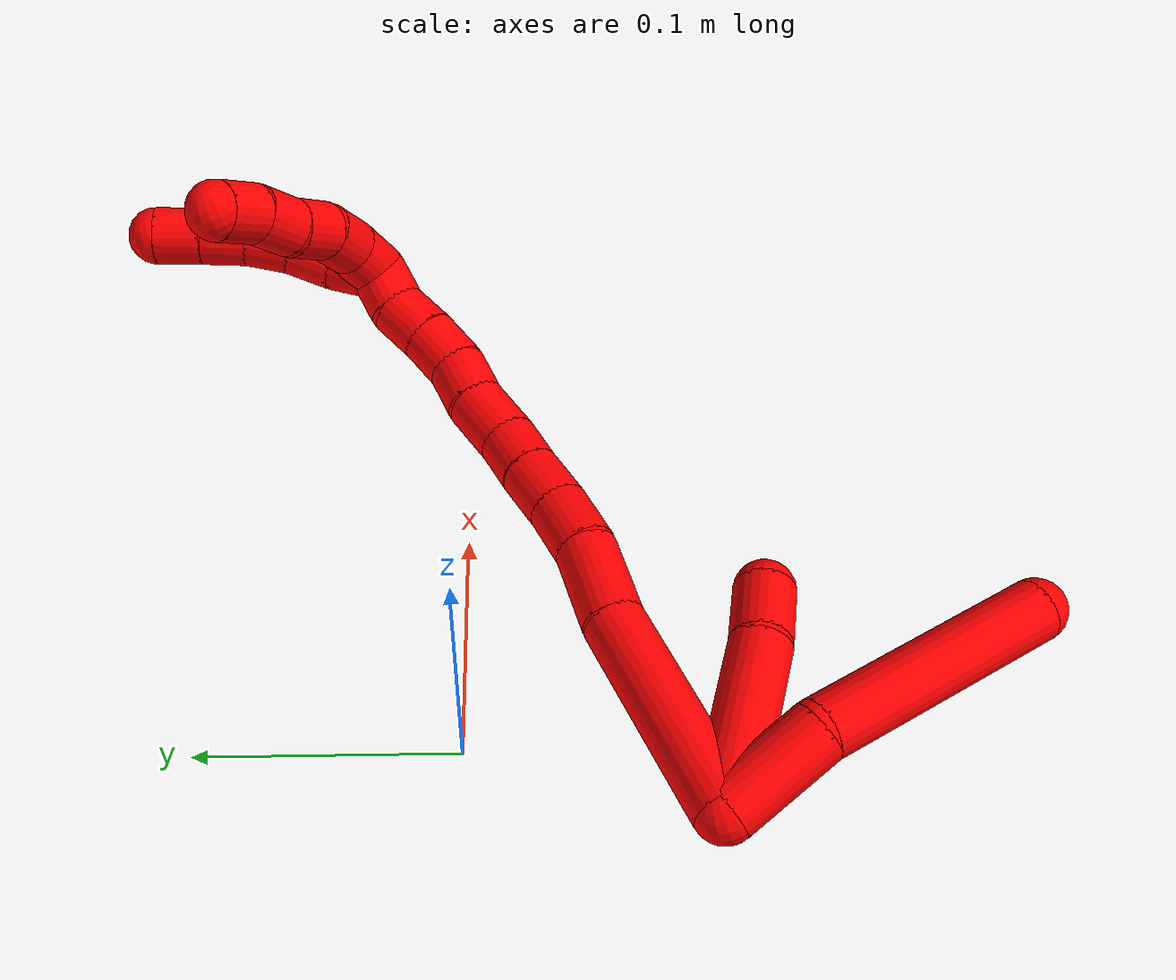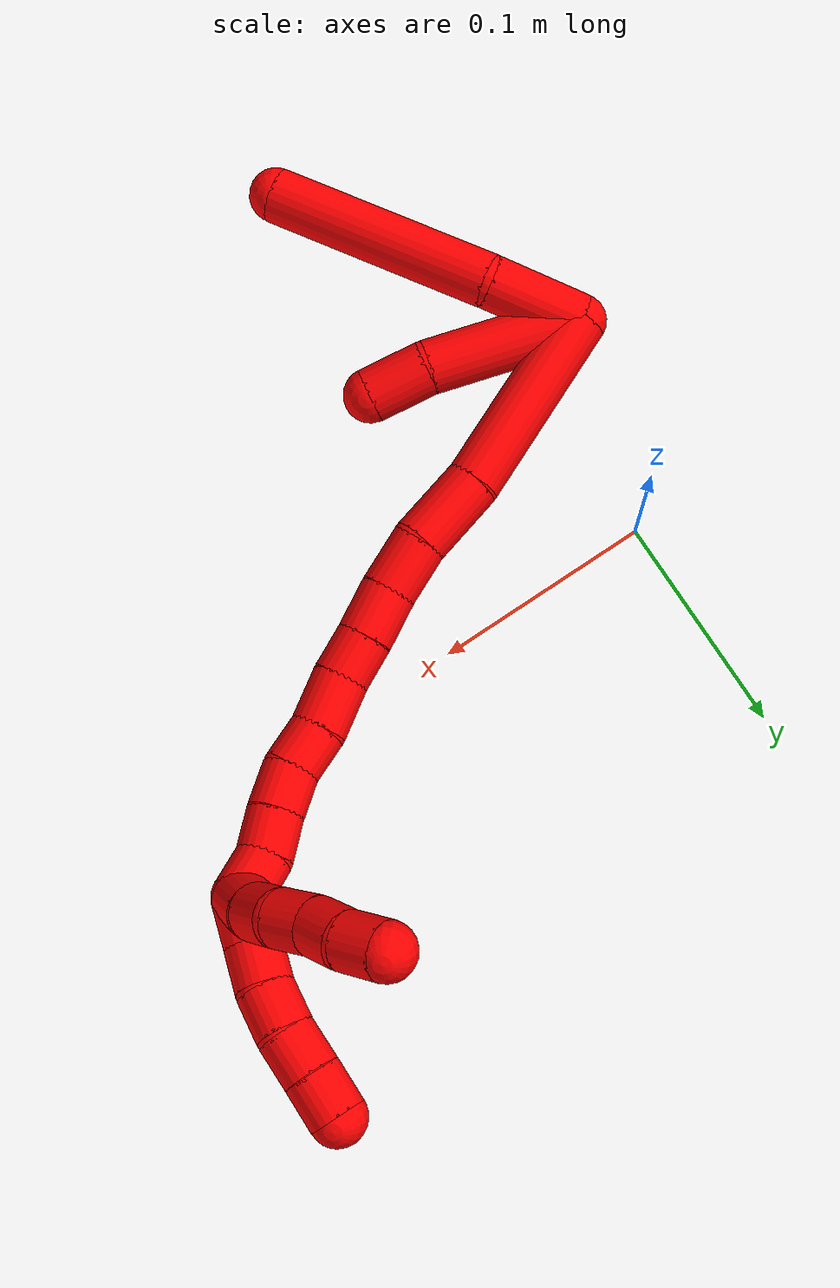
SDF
<sdf version="1.7">
 <world name="default">
  <model name="2">
   <static>0</static>
   <link name="2">
    <collision name="collision-cylinder-e_1_2_8">
     <pose>0.01522 -0.01593 0.002915 1.38982 0.754379 0.63794</pose>
     <geometry><cylinder><radius>0.0125</radius><length>0.044449</length></cylinder></geometry>
     <surface>
      <friction><ode><mu>1.16</mu><mu2>1.16</mu2><slip1>0</slip1><slip2>0</slip2></ode></friction>
      <contact><ode><kp>1e+06</kp><kd>1</kd><max_vel>0</max_vel><min_depth>0.001</min_depth></ode></contact>
     </surface>
    </collision>
    <visual name="visual-cylinder-e_1_2_8">
     <pose>0.01522 -0.01593 0.002915 1.38982 0.754379 0.63794</pose>
     <geometry><cylinder><radius>0.0125</radius><length>0.044449</length></cylinder></geometry>
     <material><ambient>1 0 0 1</ambient></material>
    </visual>
    <collision name="collision-cylinder-e_2_8_6">
     <pose>0.069043 -0.066851 -0.002583 1.80676 0.820439 1.00853</pose>
     <geometry><cylinder><radius>0.0125</radius><length>0.105551</length></cylinder></geometry>
     <surface>
      <friction><ode><mu>1.16</mu><mu2>1.16</mu2><slip1>0</slip1><slip2>0</slip2></ode></friction>
      <contact><ode><kp>1e+06</kp><kd>1</kd><max_vel>0</max_vel><min_depth>0.001</min_depth></ode></contact>
     </surface>
    </collision>
    <visual name="visual-cylinder-e_2_8_6">
     <pose>0.069043 -0.066851 -0.002583 1.80676 0.820439 1.00853</pose>
     <geometry><cylinder><radius>0.0125</radius><length>0.105551</length></cylinder></geometry>
     <material><ambient>1 0 0 1</ambient></material>
    </visual>
    <collision name="collision-cylinder-e_1_2_9">
     <pose>0.034478 -0.003744 0.009129 0.389211 1.29206 0.295053</pose>
     <geometry><cylinder><radius>0.0125</radius><length>0.071724</length></cylinder></geometry>
     <surface>
      <friction><ode><mu>1.16</mu><mu2>1.16</mu2><slip1>0</slip1><slip2>0</slip2></ode></friction>
      <contact><ode><kp>1e+06</kp><kd>1</kd><max_vel>0</max_vel><min_depth>0.001</min_depth></ode></contact>
     </surface>
    </collision>
    <visual name="visual-cylinder-e_1_2_9">
     <pose>0.034478 -0.003744 0.009129 0.389211 1.29206 0.295053</pose>
     <geometry><cylinder><radius>0.0125</radius><length>0.071724</length></cylinder></geometry>
     <material><ambient>1 0 0 1</ambient></material>
    </visual>
    <collision name="collision-cylinder-e_2_9_5">
     <pose>0.082903 -0.006641 0.020413 -0.374673 1.40624 -0.318632</pose>
     <geometry><cylinder><radius>0.0125</radius><length>0.028276</length></cylinder></geometry>
     <surface>
      <friction><ode><mu>1.16</mu><mu2>1.16</mu2><slip1>0</slip1><slip2>0</slip2></ode></friction>
      <contact><ode><kp>1e+06</kp><kd>1</kd><max_vel>0</max_vel><min_depth>0.001</min_depth></ode></contact>
     </surface>
    </collision>
    <visual name="visual-cylinder-e_2_9_5">
     <pose>0.082903 -0.006641 0.020413 -0.374673 1.40624 -0.318632</pose>
     <geometry><cylinder><radius>0.0125</radius><length>0.028276</length></cylinder></geometry>
     <material><ambient>1 0 0 1</ambient></material>
    </visual>
    <collision name="collision-cylinder-e_1_2_10">
     <pose>0.033174 0.022372 0.019674 -0.849489 0.839062 -0.398097</pose>
     <geometry><cylinder><radius>0.0125</radius><length>0.089176</length></cylinder></geometry>
     <surface>
      <friction><ode><mu>1.16</mu><mu2>1.16</mu2><slip1>0</slip1><slip2>0</slip2></ode></friction>
      <contact><ode><kp>1e+06</kp><kd>1</kd><max_vel>0</max_vel><min_depth>0.001</min_depth></ode></contact>
     </surface>
    </collision>
    <visual name="visual-cylinder-e_1_2_10">
     <pose>0.033174 0.022372 0.019674 -0.849489 0.839062 -0.398097</pose>
     <geometry><cylinder><radius>0.0125</radius><length>0.089176</length></cylinder></geometry>
     <material><ambient>1 0 0 1</ambient></material>
    </visual>
    <collision name="collision-cylinder-e_2_10_11">
     <pose>0.081058 0.051475 0.046997 -0.721603 0.964974 -0.390232</pose>
     <geometry><cylinder><radius>0.0125</radius><length>0.035787</length></cylinder></geometry>
     <surface>
      <friction><ode><mu>1.16</mu><mu2>1.16</mu2><slip1>0</slip1><slip2>0</slip2></ode></friction>
      <contact><ode><kp>1e+06</kp><kd>1</kd><max_vel>0</max_vel><min_depth>0.001</min_depth></ode></contact>
     </surface>
    </collision>
    <visual name="visual-cylinder-e_2_10_11">
     <pose>0.081058 0.051475 0.046997 -0.721603 0.964974 -0.390232</pose>
     <geometry><cylinder><radius>0.0125</radius><length>0.035787</length></cylinder></geometry>
     <material><ambient>1 0 0 1</ambient></material>
    </visual>
    <collision name="collision-cylinder-e_3_11_12">
     <pose>0.105467 0.065073 0.059328 -0.972381 0.86241 -0.477051</pose>
     <geometry><cylinder><radius>0.0125</radius><length>0.025548</length></cylinder></geometry>
     <surface>
      <friction><ode><mu>1.16</mu><mu2>1.16</mu2><slip1>0</slip1><slip2>0</slip2></ode></friction>
      <contact><ode><kp>1e+06</kp><kd>1</kd><max_vel>0</max_vel><min_depth>0.001</min_depth></ode></contact>
     </surface>
    </collision>
    <visual name="visual-cylinder-e_3_11_12">
     <pose>0.105467 0.065073 0.059328 -0.972381 0.86241 -0.477051</pose>
     <geometry><cylinder><radius>0.0125</radius><length>0.025548</length></cylinder></geometry>
     <material><ambient>1 0 0 1</ambient></material>
    </visual>
    <collision name="collision-cylinder-e_4_12_13">
     <pose>0.123113 0.078761 0.068881 -0.95066 0.758645 -0.404722</pose>
     <geometry><cylinder><radius>0.0125</radius><length>0.023099</length></cylinder></geometry>
     <surface>
      <friction><ode><mu>1.16</mu><mu2>1.16</mu2><slip1>0</slip1><slip2>0</slip2></ode></friction>
      <contact><ode><kp>1e+06</kp><kd>1</kd><max_vel>0</max_vel><min_depth>0.001</min_depth></ode></contact>
     </surface>
    </collision>
    <visual name="visual-cylinder-e_4_12_13">
     <pose>0.123113 0.078761 0.068881 -0.95066 0.758645 -0.404722</pose>
     <geometry><cylinder><radius>0.0125</radius><length>0.023099</length></cylinder></geometry>
     <material><ambient>1 0 0 1</ambient></material>
    </visual>
    <collision name="collision-cylinder-e_5_13_14">
     <pose>0.138473 0.091218 0.077972 -0.928109 0.811229 -0.423423</pose>
     <geometry><cylinder><radius>0.0125</radius><length>0.02045</length></cylinder></geometry>
     <surface>
      <friction><ode><mu>1.16</mu><mu2>1.16</mu2><slip1>0</slip1><slip2>0</slip2></ode></friction>
      <contact><ode><kp>1e+06</kp><kd>1</kd><max_vel>0</max_vel><min_depth>0.001</min_depth></ode></contact>
     </surface>
    </collision>
    <visual name="visual-cylinder-e_5_13_14">
     <pose>0.138473 0.091218 0.077972 -0.928109 0.811229 -0.423423</pose>
     <geometry><cylinder><radius>0.0125</radius><length>0.02045</length></cylinder></geometry>
     <material><ambient>1 0 0 1</ambient></material>
    </visual>
    <collision name="collision-cylinder-e_6_14_15">
     <pose>0.153466 0.104371 0.088498 -0.872818 0.657713 -0.315669</pose>
     <geometry><cylinder><radius>0.0125</radius><length>0.024795</length></cylinder></geometry>
     <surface>
      <friction><ode><mu>1.16</mu><mu2>1.16</mu2><slip1>0</slip1><slip2>0</slip2></ode></friction>
      <contact><ode><kp>1e+06</kp><kd>1</kd><max_vel>0</max_vel><min_depth>0.001</min_depth></ode></contact>
     </surface>
    </collision>
    <visual name="visual-cylinder-e_6_14_15">
     <pose>0.153466 0.104371 0.088498 -0.872818 0.657713 -0.315669</pose>
     <geometry><cylinder><radius>0.0125</radius><length>0.024795</length></cylinder></geometry>
     <material><ambient>1 0 0 1</ambient></material>
    </visual>
    <collision name="collision-cylinder-e_7_15_16">
     <pose>0.168466 0.116557 0.100332 -0.701251 0.797994 -0.305988</pose>
     <geometry><cylinder><radius>0.0125</radius><length>0.020732</length></cylinder></geometry>
     <surface>
      <friction><ode><mu>1.16</mu><mu2>1.16</mu2><slip1>0</slip1><slip2>0</slip2></ode></friction>
      <contact><ode><kp>1e+06</kp><kd>1</kd><max_vel>0</max_vel><min_depth>0.001</min_depth></ode></contact>
     </surface>
    </collision>
    <visual name="visual-cylinder-e_7_15_16">
     <pose>0.168466 0.116557 0.100332 -0.701251 0.797994 -0.305988</pose>
     <geometry><cylinder><radius>0.0125</radius><length>0.020732</length></cylinder></geometry>
     <material><ambient>1 0 0 1</ambient></material>
    </visual>
    <collision name="collision-cylinder-e_8_16_17">
     <pose>0.181007 0.127344 0.1122 -0.767627 0.526464 -0.216805</pose>
     <geometry><cylinder><radius>0.0125</radius><length>0.020378</length></cylinder></geometry>
     <surface>
      <friction><ode><mu>1.16</mu><mu2>1.16</mu2><slip1>0</slip1><slip2>0</slip2></ode></friction>
      <contact><ode><kp>1e+06</kp><kd>1</kd><max_vel>0</max_vel><min_depth>0.001</min_depth></ode></contact>
     </surface>
    </collision>
    <visual name="visual-cylinder-e_8_16_17">
     <pose>0.181007 0.127344 0.1122 -0.767627 0.526464 -0.216805</pose>
     <geometry><cylinder><radius>0.0125</radius><length>0.020378</length></cylinder></geometry>
     <material><ambient>1 0 0 1</ambient></material>
    </visual>
    <collision name="collision-cylinder-e_9_17_18">
     <pose>0.190429 0.140067 0.124712 -0.819265 0.444085 -0.195428</pose>
     <geometry><cylinder><radius>0.0125</radius><length>0.020023</length></cylinder></geometry>
     <surface>
      <friction><ode><mu>1.16</mu><mu2>1.16</mu2><slip1>0</slip1><slip2>0</slip2></ode></friction>
      <contact><ode><kp>1e+06</kp><kd>1</kd><max_vel>0</max_vel><min_depth>0.001</min_depth></ode></contact>
     </surface>
    </collision>
    <visual name="visual-cylinder-e_9_17_18">
     <pose>0.190429 0.140067 0.124712 -0.819265 0.444085 -0.195428</pose>
     <geometry><cylinder><radius>0.0125</radius><length>0.020023</length></cylinder></geometry>
     <material><ambient>1 0 0 1</ambient></material>
    </visual>
    <collision name="collision-cylinder-e_10_18_1">
     <pose>0.200292 0.150528 0.138255 -0.482059 0.589347 -0.148934</pose>
     <geometry><cylinder><radius>0.0125</radius><length>0.020012</length></cylinder></geometry>
     <surface>
      <friction><ode><mu>1.16</mu><mu2>1.16</mu2><slip1>0</slip1><slip2>0</slip2></ode></friction>
      <contact><ode><kp>1e+06</kp><kd>1</kd><max_vel>0</max_vel><min_depth>0.001</min_depth></ode></contact>
     </surface>
    </collision>
    <visual name="visual-cylinder-e_10_18_1">
     <pose>0.200292 0.150528 0.138255 -0.482059 0.589347 -0.148934</pose>
     <geometry><cylinder><radius>0.0125</radius><length>0.020012</length></cylinder></geometry>
     <material><ambient>1 0 0 1</ambient></material>
    </visual>
    <collision name="collision-cylinder-e_1_1_19">
     <pose>0.20097 0.155446 0.154287 -0.121892 -0.510116 0.031819</pose>
     <geometry><cylinder><radius>0.0125</radius><length>0.02</length></cylinder></geometry>
     <surface>
      <friction><ode><mu>1.16</mu><mu2>1.16</mu2><slip1>0</slip1><slip2>0</slip2></ode></friction>
      <contact><ode><kp>1e+06</kp><kd>1</kd><max_vel>0</max_vel><min_depth>0.001</min_depth></ode></contact>
     </surface>
    </collision>
    <visual name="visual-cylinder-e_1_1_19">
     <pose>0.20097 0.155446 0.154287 -0.121892 -0.510116 0.031819</pose>
     <geometry><cylinder><radius>0.0125</radius><length>0.02</length></cylinder></geometry>
     <material><ambient>1 0 0 1</ambient></material>
    </visual>
    <collision name="collision-cylinder-e_2_19_20">
     <pose>0.189297 0.156826 0.170283 -0.043403 -0.746533 0.017</pose>
     <geometry><cylinder><radius>0.0125</radius><length>0.02</length></cylinder></geometry>
     <surface>
      <friction><ode><mu>1.16</mu><mu2>1.16</mu2><slip1>0</slip1><slip2>0</slip2></ode></friction>
      <contact><ode><kp>1e+06</kp><kd>1</kd><max_vel>0</max_vel><min_depth>0.001</min_depth></ode></contact>
     </surface>
    </collision>
    <visual name="visual-cylinder-e_2_19_20">
     <pose>0.189297 0.156826 0.170283 -0.043403 -0.746533 0.017</pose>
     <geometry><cylinder><radius>0.0125</radius><length>0.02</length></cylinder></geometry>
     <material><ambient>1 0 0 1</ambient></material>
    </visual>
    <collision name="collision-cylinder-e_3_20_21">
     <pose>0.174318 0.159295 0.182939 -0.384041 -0.95933 0.201579</pose>
     <geometry><cylinder><radius>0.0125</radius><length>0.02</length></cylinder></geometry>
     <surface>
      <friction><ode><mu>1.16</mu><mu2>1.16</mu2><slip1>0</slip1><slip2>0</slip2></ode></friction>
      <contact><ode><kp>1e+06</kp><kd>1</kd><max_vel>0</max_vel><min_depth>0.001</min_depth></ode></contact>
     </surface>
    </collision>
    <visual name="visual-cylinder-e_3_20_21">
     <pose>0.174318 0.159295 0.182939 -0.384041 -0.95933 0.201579</pose>
     <geometry><cylinder><radius>0.0125</radius><length>0.02</length></cylinder></geometry>
     <material><ambient>1 0 0 1</ambient></material>
    </visual>
    <collision name="collision-cylinder-e_4_21_22">
     <pose>0.159322 0.163708 0.195229 -0.313913 -0.748758 0.124202</pose>
     <geometry><cylinder><radius>0.0125</radius><length>0.02</length></cylinder></geometry>
     <surface>
      <friction><ode><mu>1.16</mu><mu2>1.16</mu2><slip1>0</slip1><slip2>0</slip2></ode></friction>
      <contact><ode><kp>1e+06</kp><kd>1</kd><max_vel>0</max_vel><min_depth>0.001</min_depth></ode></contact>
     </surface>
    </collision>
    <visual name="visual-cylinder-e_4_21_22">
     <pose>0.159322 0.163708 0.195229 -0.313913 -0.748758 0.124202</pose>
     <geometry><cylinder><radius>0.0125</radius><length>0.02</length></cylinder></geometry>
     <material><ambient>1 0 0 1</ambient></material>
    </visual>
    <collision name="collision-cylinder-e_5_22_4">
     <pose>0.144407 0.168652 0.2074 -0.475934 -0.945429 0.246825</pose>
     <geometry><cylinder><radius>0.0125</radius><length>0.02</length></cylinder></geometry>
     <surface>
      <friction><ode><mu>1.16</mu><mu2>1.16</mu2><slip1>0</slip1><slip2>0</slip2></ode></friction>
      <contact><ode><kp>1e+06</kp><kd>1</kd><max_vel>0</max_vel><min_depth>0.001</min_depth></ode></contact>
     </surface>
    </collision>
    <visual name="visual-cylinder-e_5_22_4">
     <pose>0.144407 0.168652 0.2074 -0.475934 -0.945429 0.246825</pose>
     <geometry><cylinder><radius>0.0125</radius><length>0.02</length></cylinder></geometry>
     <material><ambient>1 0 0 1</ambient></material>
    </visual>
    <collision name="collision-cylinder-e_1_1_23">
     <pose>0.206053 0.16339 0.149969 -1.12139 0.019968 -0.012538</pose>
     <geometry><cylinder><radius>0.0125</radius><length>0.02</length></cylinder></geometry>
     <surface>
      <friction><ode><mu>1.16</mu><mu2>1.16</mu2><slip1>0</slip1><slip2>0</slip2></ode></friction>
      <contact><ode><kp>1e+06</kp><kd>1</kd><max_vel>0</max_vel><min_depth>0.001</min_depth></ode></contact>
     </surface>
    </collision>
    <visual name="visual-cylinder-e_1_1_23">
     <pose>0.206053 0.16339 0.149969 -1.12139 0.019968 -0.012538</pose>
     <geometry><cylinder><radius>0.0125</radius><length>0.02</length></cylinder></geometry>
     <material><ambient>1 0 0 1</ambient></material>
    </visual>
    <collision name="collision-cylinder-e_2_23_24">
     <pose>0.205714 0.180293 0.160422 -0.912311 -0.053886 0.026445</pose>
     <geometry><cylinder><radius>0.0125</radius><length>0.02</length></cylinder></geometry>
     <surface>
      <friction><ode><mu>1.16</mu><mu2>1.16</mu2><slip1>0</slip1><slip2>0</slip2></ode></friction>
      <contact><ode><kp>1e+06</kp><kd>1</kd><max_vel>0</max_vel><min_depth>0.001</min_depth></ode></contact>
     </surface>
    </collision>
    <visual name="visual-cylinder-e_2_23_24">
     <pose>0.205714 0.180293 0.160422 -0.912311 -0.053886 0.026445</pose>
     <geometry><cylinder><radius>0.0125</radius><length>0.02</length></cylinder></geometry>
     <material><ambient>1 0 0 1</ambient></material>
    </visual>
    <collision name="collision-cylinder-e_3_24_25">
     <pose>0.203248 0.196579 0.171624 -1.02522 -0.193967 0.109397</pose>
     <geometry><cylinder><radius>0.0125</radius><length>0.02</length></cylinder></geometry>
     <surface>
      <friction><ode><mu>1.16</mu><mu2>1.16</mu2><slip1>0</slip1><slip2>0</slip2></ode></friction>
      <contact><ode><kp>1e+06</kp><kd>1</kd><max_vel>0</max_vel><min_depth>0.001</min_depth></ode></contact>
     </surface>
    </collision>
    <visual name="visual-cylinder-e_3_24_25">
     <pose>0.203248 0.196579 0.171624 -1.02522 -0.193967 0.109397</pose>
     <geometry><cylinder><radius>0.0125</radius><length>0.02</length></cylinder></geometry>
     <material><ambient>1 0 0 1</ambient></material>
    </visual>
    <collision name="collision-cylinder-e_4_25_26">
     <pose>0.198505 0.213754 0.18057 -1.15751 -0.285394 0.187201</pose>
     <geometry><cylinder><radius>0.0125</radius><length>0.02</length></cylinder></geometry>
     <surface>
      <friction><ode><mu>1.16</mu><mu2>1.16</mu2><slip1>0</slip1><slip2>0</slip2></ode></friction>
      <contact><ode><kp>1e+06</kp><kd>1</kd><max_vel>0</max_vel><min_depth>0.001</min_depth></ode></contact>
     </surface>
    </collision>
    <visual name="visual-cylinder-e_4_25_26">
     <pose>0.198505 0.213754 0.18057 -1.15751 -0.285394 0.187201</pose>
     <geometry><cylinder><radius>0.0125</radius><length>0.02</length></cylinder></geometry>
     <material><ambient>1 0 0 1</ambient></material>
    </visual>
    <collision name="collision-cylinder-e_5_26_3">
     <pose>0.19313 0.231544 0.187947 -1.19773 -0.258859 0.177191</pose>
     <geometry><cylinder><radius>0.0125</radius><length>0.02</length></cylinder></geometry>
     <surface>
      <friction><ode><mu>1.16</mu><mu2>1.16</mu2><slip1>0</slip1><slip2>0</slip2></ode></friction>
      <contact><ode><kp>1e+06</kp><kd>1</kd><max_vel>0</max_vel><min_depth>0.001</min_depth></ode></contact>
     </surface>
    </collision>
    <visual name="visual-cylinder-e_5_26_3">
     <pose>0.19313 0.231544 0.187947 -1.19773 -0.258859 0.177191</pose>
     <geometry><cylinder><radius>0.0125</radius><length>0.02</length></cylinder></geometry>
     <material><ambient>1 0 0 1</ambient></material>
    </visual>
    <collision name="collision-sphere-3">
     <pose>0.19057 0.240546 0.19147 0 -0 0</pose>
     <geometry><sphere><radius>0.0125</radius></sphere></geometry>
     <surface>
      <friction><ode><mu>1.16</mu><mu2>1.16</mu2><slip1>0</slip1><slip2>0</slip2></ode></friction>
      <contact><ode><kp>1e+06</kp><kd>1</kd><max_vel>0</max_vel><min_depth>0.001</min_depth></ode></contact>
     </surface>
    </collision>
    <visual name="visual-sphere-3">
     <pose>0.19057 0.240546 0.19147 0 -0 0</pose>
     <geometry><sphere><radius>0.0125</radius></sphere></geometry>
     <material><ambient>1 0 0 1</ambient></material>
    </visual>
    <collision name="collision-sphere-26">
     <pose>0.19569 0.222542 0.184424 0 -0 0</pose>
     <geometry><sphere><radius>0.0125</radius></sphere></geometry>
     <surface>
      <friction><ode><mu>1.16</mu><mu2>1.16</mu2><slip1>0</slip1><slip2>0</slip2></ode></friction>
      <contact><ode><kp>1e+06</kp><kd>1</kd><max_vel>0</max_vel><min_depth>0.001</min_depth></ode></contact>
     </surface>
    </collision>
    <visual name="visual-sphere-26">
     <pose>0.19569 0.222542 0.184424 0 -0 0</pose>
     <geometry><sphere><radius>0.0125</radius></sphere></geometry>
     <material><ambient>1 0 0 1</ambient></material>
    </visual>
    <collision name="collision-sphere-25">
     <pose>0.20132 0.204967 0.176716 0 -0 0</pose>
     <geometry><sphere><radius>0.0125</radius></sphere></geometry>
     <surface>
      <friction><ode><mu>1.16</mu><mu2>1.16</mu2><slip1>0</slip1><slip2>0</slip2></ode></friction>
      <contact><ode><kp>1e+06</kp><kd>1</kd><max_vel>0</max_vel><min_depth>0.001</min_depth></ode></contact>
     </surface>
    </collision>
    <visual name="visual-sphere-25">
     <pose>0.20132 0.204967 0.176716 0 -0 0</pose>
     <geometry><sphere><radius>0.0125</radius></sphere></geometry>
     <material><ambient>1 0 0 1</ambient></material>
    </visual>
    <collision name="collision-sphere-24">
     <pose>0.205175 0.188191 0.166533 0 -0 0</pose>
     <geometry><sphere><radius>0.0125</radius></sphere></geometry>
     <surface>
      <friction><ode><mu>1.16</mu><mu2>1.16</mu2><slip1>0</slip1><slip2>0</slip2></ode></friction>
      <contact><ode><kp>1e+06</kp><kd>1</kd><max_vel>0</max_vel><min_depth>0.001</min_depth></ode></contact>
     </surface>
    </collision>
    <visual name="visual-sphere-24">
     <pose>0.205175 0.188191 0.166533 0 -0 0</pose>
     <geometry><sphere><radius>0.0125</radius></sphere></geometry>
     <material><ambient>1 0 0 1</ambient></material>
    </visual>
    <collision name="collision-sphere-23">
     <pose>0.206253 0.172395 0.154312 0 -0 0</pose>
     <geometry><sphere><radius>0.0125</radius></sphere></geometry>
     <surface>
      <friction><ode><mu>1.16</mu><mu2>1.16</mu2><slip1>0</slip1><slip2>0</slip2></ode></friction>
      <contact><ode><kp>1e+06</kp><kd>1</kd><max_vel>0</max_vel><min_depth>0.001</min_depth></ode></contact>
     </surface>
    </collision>
    <visual name="visual-sphere-23">
     <pose>0.206253 0.172395 0.154312 0 -0 0</pose>
     <geometry><sphere><radius>0.0125</radius></sphere></geometry>
     <material><ambient>1 0 0 1</ambient></material>
    </visual>
    <collision name="collision-sphere-4">
     <pose>0.1363 0.171334 0.212603 0 -0 0</pose>
     <geometry><sphere><radius>0.0125</radius></sphere></geometry>
     <surface>
      <friction><ode><mu>1.16</mu><mu2>1.16</mu2><slip1>0</slip1><slip2>0</slip2></ode></friction>
      <contact><ode><kp>1e+06</kp><kd>1</kd><max_vel>0</max_vel><min_depth>0.001</min_depth></ode></contact>
     </surface>
    </collision>
    <visual name="visual-sphere-4">
     <pose>0.1363 0.171334 0.212603 0 -0 0</pose>
     <geometry><sphere><radius>0.0125</radius></sphere></geometry>
     <material><ambient>1 0 0 1</ambient></material>
    </visual>
    <collision name="collision-sphere-22">
     <pose>0.152515 0.16597 0.202196 0 -0 0</pose>
     <geometry><sphere><radius>0.0125</radius></sphere></geometry>
     <surface>
      <friction><ode><mu>1.16</mu><mu2>1.16</mu2><slip1>0</slip1><slip2>0</slip2></ode></friction>
      <contact><ode><kp>1e+06</kp><kd>1</kd><max_vel>0</max_vel><min_depth>0.001</min_depth></ode></contact>
     </surface>
    </collision>
    <visual name="visual-sphere-22">
     <pose>0.152515 0.16597 0.202196 0 -0 0</pose>
     <geometry><sphere><radius>0.0125</radius></sphere></geometry>
     <material><ambient>1 0 0 1</ambient></material>
    </visual>
    <collision name="collision-sphere-21">
     <pose>0.16613 0.161446 0.188261 0 -0 0</pose>
     <geometry><sphere><radius>0.0125</radius></sphere></geometry>
     <surface>
      <friction><ode><mu>1.16</mu><mu2>1.16</mu2><slip1>0</slip1><slip2>0</slip2></ode></friction>
      <contact><ode><kp>1e+06</kp><kd>1</kd><max_vel>0</max_vel><min_depth>0.001</min_depth></ode></contact>
     </surface>
    </collision>
    <visual name="visual-sphere-21">
     <pose>0.16613 0.161446 0.188261 0 -0 0</pose>
     <geometry><sphere><radius>0.0125</radius></sphere></geometry>
     <material><ambient>1 0 0 1</ambient></material>
    </visual>
    <collision name="collision-sphere-20">
     <pose>0.182506 0.157144 0.177616 0 -0 0</pose>
     <geometry><sphere><radius>0.0125</radius></sphere></geometry>
     <surface>
      <friction><ode><mu>1.16</mu><mu2>1.16</mu2><slip1>0</slip1><slip2>0</slip2></ode></friction>
      <contact><ode><kp>1e+06</kp><kd>1</kd><max_vel>0</max_vel><min_depth>0.001</min_depth></ode></contact>
     </surface>
    </collision>
    <visual name="visual-sphere-20">
     <pose>0.182506 0.157144 0.177616 0 -0 0</pose>
     <geometry><sphere><radius>0.0125</radius></sphere></geometry>
     <material><ambient>1 0 0 1</ambient></material>
    </visual>
    <collision name="collision-sphere-10">
     <pose>0.066348 0.044744 0.039347 0 -0 0</pose>
     <geometry><sphere><radius>0.0125</radius></sphere></geometry>
     <surface>
      <friction><ode><mu>1.16</mu><mu2>1.16</mu2><slip1>0</slip1><slip2>0</slip2></ode></friction>
      <contact><ode><kp>1e+06</kp><kd>1</kd><max_vel>0</max_vel><min_depth>0.001</min_depth></ode></contact>
     </surface>
    </collision>
    <visual name="visual-sphere-10">
     <pose>0.066348 0.044744 0.039347 0 -0 0</pose>
     <geometry><sphere><radius>0.0125</radius></sphere></geometry>
     <material><ambient>1 0 0 1</ambient></material>
    </visual>
    <collision name="collision-sphere-5">
     <pose>0.09685 -0.005793 0.022569 0 -0 0</pose>
     <geometry><sphere><radius>0.0125</radius></sphere></geometry>
     <surface>
      <friction><ode><mu>1.16</mu><mu2>1.16</mu2><slip1>0</slip1><slip2>0</slip2></ode></friction>
      <contact><ode><kp>1e+06</kp><kd>1</kd><max_vel>0</max_vel><min_depth>0.001</min_depth></ode></contact>
     </surface>
    </collision>
    <visual name="visual-sphere-5">
     <pose>0.09685 -0.005793 0.022569 0 -0 0</pose>
     <geometry><sphere><radius>0.0125</radius></sphere></geometry>
     <material><ambient>1 0 0 1</ambient></material>
    </visual>
    <collision name="collision-sphere-6">
     <pose>0.107645 -0.101842 -0.010996 0 -0 0</pose>
     <geometry><sphere><radius>0.0125</radius></sphere></geometry>
     <surface>
      <friction><ode><mu>1.16</mu><mu2>1.16</mu2><slip1>0</slip1><slip2>0</slip2></ode></friction>
      <contact><ode><kp>1e+06</kp><kd>1</kd><max_vel>0</max_vel><min_depth>0.001</min_depth></ode></contact>
     </surface>
    </collision>
    <visual name="visual-sphere-6">
     <pose>0.107645 -0.101842 -0.010996 0 -0 0</pose>
     <geometry><sphere><radius>0.0125</radius></sphere></geometry>
     <material><ambient>1 0 0 1</ambient></material>
    </visual>
    <collision name="collision-sphere-9">
     <pose>0.068956 -0.007488 0.018258 0 -0 0</pose>
     <geometry><sphere><radius>0.0125</radius></sphere></geometry>
     <surface>
      <friction><ode><mu>1.16</mu><mu2>1.16</mu2><slip1>0</slip1><slip2>0</slip2></ode></friction>
      <contact><ode><kp>1e+06</kp><kd>1</kd><max_vel>0</max_vel><min_depth>0.001</min_depth></ode></contact>
     </surface>
    </collision>
    <visual name="visual-sphere-9">
     <pose>0.068956 -0.007488 0.018258 0 -0 0</pose>
     <geometry><sphere><radius>0.0125</radius></sphere></geometry>
     <material><ambient>1 0 0 1</ambient></material>
    </visual>
    <collision name="collision-sphere-2">
     <geometry><sphere><radius>0.0125</radius></sphere></geometry>
     <surface>
      <friction><ode><mu>1.16</mu><mu2>1.16</mu2><slip1>0</slip1><slip2>0</slip2></ode></friction>
      <contact><ode><kp>1e+06</kp><kd>1</kd><max_vel>0</max_vel><min_depth>0.001</min_depth></ode></contact>
     </surface>
    </collision>
    <visual name="visual-sphere-2">
     <geometry><sphere><radius>0.0125</radius></sphere></geometry>
     <material><ambient>1 0 0 1</ambient></material>
    </visual>
    <collision name="collision-sphere-19">
     <pose>0.196088 0.156507 0.162949 0 -0 0</pose>
     <geometry><sphere><radius>0.0125</radius></sphere></geometry>
     <surface>
      <friction><ode><mu>1.16</mu><mu2>1.16</mu2><slip1>0</slip1><slip2>0</slip2></ode></friction>
      <contact><ode><kp>1e+06</kp><kd>1</kd><max_vel>0</max_vel><min_depth>0.001</min_depth></ode></contact>
     </surface>
    </collision>
    <visual name="visual-sphere-19">
     <pose>0.196088 0.156507 0.162949 0 -0 0</pose>
     <geometry><sphere><radius>0.0125</radius></sphere></geometry>
     <material><ambient>1 0 0 1</ambient></material>
    </visual>
    <collision name="collision-sphere-8">
     <pose>0.03044 -0.031861 0.00583 0 -0 0</pose>
     <geometry><sphere><radius>0.0125</radius></sphere></geometry>
     <surface>
      <friction><ode><mu>1.16</mu><mu2>1.16</mu2><slip1>0</slip1><slip2>0</slip2></ode></friction>
      <contact><ode><kp>1e+06</kp><kd>1</kd><max_vel>0</max_vel><min_depth>0.001</min_depth></ode></contact>
     </surface>
    </collision>
    <visual name="visual-sphere-8">
     <pose>0.03044 -0.031861 0.00583 0 -0 0</pose>
     <geometry><sphere><radius>0.0125</radius></sphere></geometry>
     <material><ambient>1 0 0 1</ambient></material>
    </visual>
    <collision name="collision-sphere-11">
     <pose>0.095767 0.058206 0.054646 0 -0 0</pose>
     <geometry><sphere><radius>0.0125</radius></sphere></geometry>
     <surface>
      <friction><ode><mu>1.16</mu><mu2>1.16</mu2><slip1>0</slip1><slip2>0</slip2></ode></friction>
      <contact><ode><kp>1e+06</kp><kd>1</kd><max_vel>0</max_vel><min_depth>0.001</min_depth></ode></contact>
     </surface>
    </collision>
    <visual name="visual-sphere-11">
     <pose>0.095767 0.058206 0.054646 0 -0 0</pose>
     <geometry><sphere><radius>0.0125</radius></sphere></geometry>
     <material><ambient>1 0 0 1</ambient></material>
    </visual>
    <collision name="collision-sphere-12">
     <pose>0.115168 0.071939 0.06401 0 -0 0</pose>
     <geometry><sphere><radius>0.0125</radius></sphere></geometry>
     <surface>
      <friction><ode><mu>1.16</mu><mu2>1.16</mu2><slip1>0</slip1><slip2>0</slip2></ode></friction>
      <contact><ode><kp>1e+06</kp><kd>1</kd><max_vel>0</max_vel><min_depth>0.001</min_depth></ode></contact>
     </surface>
    </collision>
    <visual name="visual-sphere-12">
     <pose>0.115168 0.071939 0.06401 0 -0 0</pose>
     <geometry><sphere><radius>0.0125</radius></sphere></geometry>
     <material><ambient>1 0 0 1</ambient></material>
    </visual>
    <collision name="collision-sphere-13">
     <pose>0.131059 0.085582 0.073753 0 -0 0</pose>
     <geometry><sphere><radius>0.0125</radius></sphere></geometry>
     <surface>
      <friction><ode><mu>1.16</mu><mu2>1.16</mu2><slip1>0</slip1><slip2>0</slip2></ode></friction>
      <contact><ode><kp>1e+06</kp><kd>1</kd><max_vel>0</max_vel><min_depth>0.001</min_depth></ode></contact>
     </surface>
    </collision>
    <visual name="visual-sphere-13">
     <pose>0.131059 0.085582 0.073753 0 -0 0</pose>
     <geometry><sphere><radius>0.0125</radius></sphere></geometry>
     <material><ambient>1 0 0 1</ambient></material>
    </visual>
    <collision name="collision-sphere-14">
     <pose>0.145887 0.096855 0.082192 0 -0 0</pose>
     <geometry><sphere><radius>0.0125</radius></sphere></geometry>
     <surface>
      <friction><ode><mu>1.16</mu><mu2>1.16</mu2><slip1>0</slip1><slip2>0</slip2></ode></friction>
      <contact><ode><kp>1e+06</kp><kd>1</kd><max_vel>0</max_vel><min_depth>0.001</min_depth></ode></contact>
     </surface>
    </collision>
    <visual name="visual-sphere-14">
     <pose>0.145887 0.096855 0.082192 0 -0 0</pose>
     <geometry><sphere><radius>0.0125</radius></sphere></geometry>
     <material><ambient>1 0 0 1</ambient></material>
    </visual>
    <collision name="collision-sphere-15">
     <pose>0.161045 0.111888 0.094803 0 -0 0</pose>
     <geometry><sphere><radius>0.0125</radius></sphere></geometry>
     <surface>
      <friction><ode><mu>1.16</mu><mu2>1.16</mu2><slip1>0</slip1><slip2>0</slip2></ode></friction>
      <contact><ode><kp>1e+06</kp><kd>1</kd><max_vel>0</max_vel><min_depth>0.001</min_depth></ode></contact>
     </surface>
    </collision>
    <visual name="visual-sphere-15">
     <pose>0.161045 0.111888 0.094803 0 -0 0</pose>
     <geometry><sphere><radius>0.0125</radius></sphere></geometry>
     <material><ambient>1 0 0 1</ambient></material>
    </visual>
    <collision name="collision-sphere-16">
     <pose>0.175888 0.121226 0.105862 0 -0 0</pose>
     <geometry><sphere><radius>0.0125</radius></sphere></geometry>
     <surface>
      <friction><ode><mu>1.16</mu><mu2>1.16</mu2><slip1>0</slip1><slip2>0</slip2></ode></friction>
      <contact><ode><kp>1e+06</kp><kd>1</kd><max_vel>0</max_vel><min_depth>0.001</min_depth></ode></contact>
     </surface>
    </collision>
    <visual name="visual-sphere-16">
     <pose>0.175888 0.121226 0.105862 0 -0 0</pose>
     <geometry><sphere><radius>0.0125</radius></sphere></geometry>
     <material><ambient>1 0 0 1</ambient></material>
    </visual>
    <collision name="collision-sphere-17">
     <pose>0.186127 0.133461 0.118539 0 -0 0</pose>
     <geometry><sphere><radius>0.0125</radius></sphere></geometry>
     <surface>
      <friction><ode><mu>1.16</mu><mu2>1.16</mu2><slip1>0</slip1><slip2>0</slip2></ode></friction>
      <contact><ode><kp>1e+06</kp><kd>1</kd><max_vel>0</max_vel><min_depth>0.001</min_depth></ode></contact>
     </surface>
    </collision>
    <visual name="visual-sphere-17">
     <pose>0.186127 0.133461 0.118539 0 -0 0</pose>
     <geometry><sphere><radius>0.0125</radius></sphere></geometry>
     <material><ambient>1 0 0 1</ambient></material>
    </visual>
    <collision name="collision-sphere-18">
     <pose>0.19473 0.146672 0.130884 0 -0 0</pose>
     <geometry><sphere><radius>0.0125</radius></sphere></geometry>
     <surface>
      <friction><ode><mu>1.16</mu><mu2>1.16</mu2><slip1>0</slip1><slip2>0</slip2></ode></friction>
      <contact><ode><kp>1e+06</kp><kd>1</kd><max_vel>0</max_vel><min_depth>0.001</min_depth></ode></contact>
     </surface>
    </collision>
    <visual name="visual-sphere-18">
     <pose>0.19473 0.146672 0.130884 0 -0 0</pose>
     <geometry><sphere><radius>0.0125</radius></sphere></geometry>
     <material><ambient>1 0 0 1</ambient></material>
    </visual>
    <collision name="collision-sphere-1">
     <pose>0.205853 0.154385 0.145625 0 -0 0</pose>
     <geometry><sphere><radius>0.0125</radius></sphere></geometry>
     <surface>
      <friction><ode><mu>1.16</mu><mu2>1.16</mu2><slip1>0</slip1><slip2>0</slip2></ode></friction>
      <contact><ode><kp>1e+06</kp><kd>1</kd><max_vel>0</max_vel><min_depth>0.001</min_depth></ode></contact>
     </surface>
    </collision>
    <visual name="visual-sphere-1">
     <pose>0.205853 0.154385 0.145625 0 -0 0</pose>
     <geometry><sphere><radius>0.0125</radius></sphere></geometry>
     <material><ambient>1 0 0 1</ambient></material>
    </visual>
    <inertial>
     <pose>0.11109 0.066893 0.075019 0 -0 0</pose>
     <mass>0.75</mass>
     <inertia>
      <ixx>0.000187</ixx>
      <ixy>0</ixy>
      <ixz>0</ixz>
      <iyy>0.000226</iyy>
      <iyz>0</iyz>
      <izz>-0.00012</izz>
     </inertia>
    </inertial>
   </link>
   <pose>-0.031879 -0.092862 0.0125 -0.421545 0.243311 -0.27124</pose>
  </model>
 </world>
</sdf>
